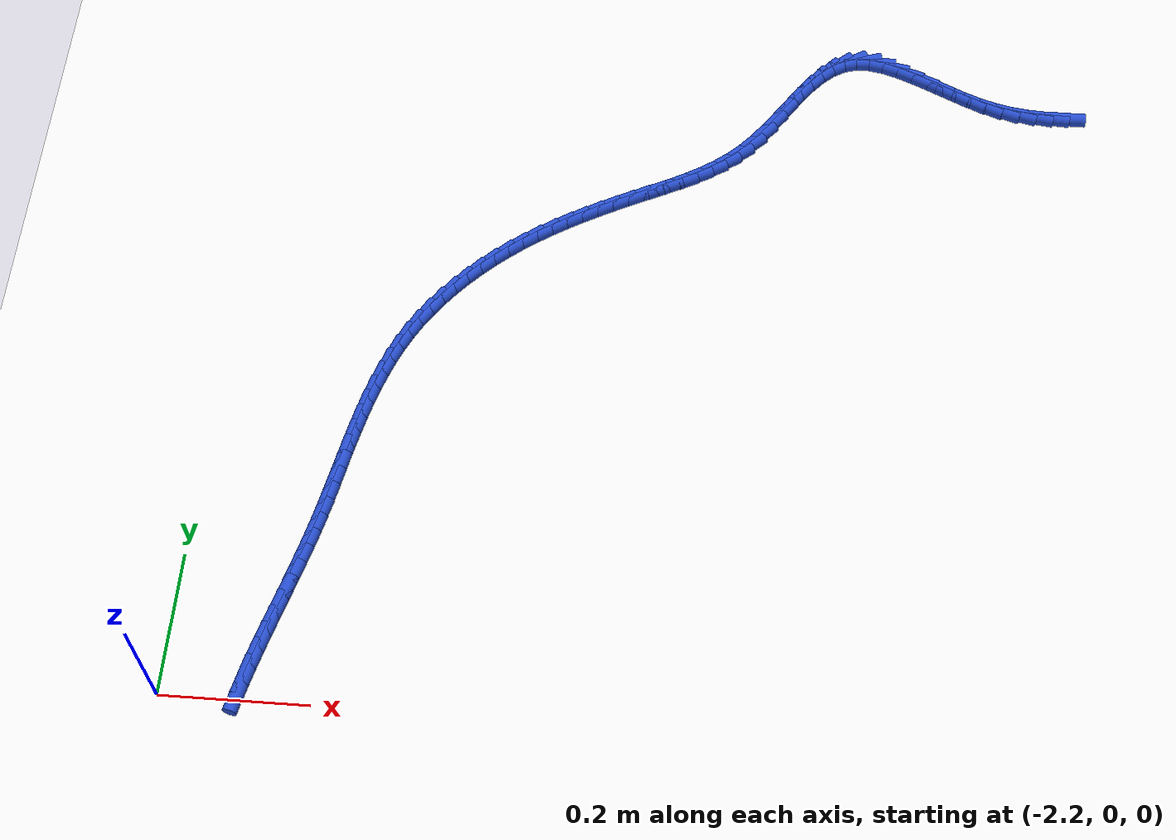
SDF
<sdf version="1.6">
 <world name="default">
  <model name="ground_plane">
   <static>1</static>
   <link name="link">
    <collision name="collision">
     <geometry><plane><normal>0 0 1</normal><size>100 100</size></plane></geometry>
     <surface><friction><ode><mu>100</mu><mu2>50</mu2></ode></friction></surface>
    </collision>
    <visual name="visual">
     <cast_shadows>0</cast_shadows>
     <geometry><plane><normal>0 0 1</normal><size>100 100</size></plane></geometry>
     <material>
      <script><uri>file://media/materials/scripts/gazebo.material</uri><name>Gazebo/WhiteGlow</name></script>
     </material>
    </visual>
   </link>
  </model>
  <model name="line">
   <link name="link_68">
    <pose>-1.021277357837377 1.003195766238584 0.01 0 1.57 -0.001047727772502265</pose>
    <collision name="collision">
     <geometry><cylinder><radius>0.01</radius><length>0.08</length></cylinder></geometry>
    </collision>
    <visual name="visual">
     <material>
      <script><name>Gazebo/Blue</name><uri>file://media/materials/scripts/gazebo.material</uri></script>
     </material>
     <geometry><cylinder><radius>0.01</radius><length>0.08</length></cylinder></geometry>
    </visual>
   </link>
   <link name="link_69">
    <pose>-1.0450305179139865 1.0032206530931873 0.01 0 1.57 -0.06642824713619397</pose>
    <collision name="collision">
     <geometry><cylinder><radius>0.01</radius><length>0.08</length></cylinder></geometry>
    </collision>
    <visual name="visual">
     <material>
      <script><name>Gazebo/Blue</name><uri>file://media/materials/scripts/gazebo.material</uri></script>
     </material>
     <geometry><cylinder><radius>0.01</radius><length>0.08</length></cylinder></geometry>
    </visual>
   </link>
   <link name="link_70">
    <pose>-1.0688698172328237 1.0048065894065108 0.01 0 1.57 -0.14197237797413534</pose>
    <collision name="collision">
     <geometry><cylinder><radius>0.01</radius><length>0.08</length></cylinder></geometry>
    </collision>
    <visual name="visual">
     <material>
      <script><name>Gazebo/Blue</name><uri>file://media/materials/scripts/gazebo.material</uri></script>
     </material>
     <geometry><cylinder><radius>0.01</radius><length>0.08</length></cylinder></geometry>
    </visual>
   </link>
   <link name="link_71">
    <pose>-1.0928592649434599 1.0082354972279208 0.01 0 1.57 -0.22555711141883675</pose>
    <collision name="collision">
     <geometry><cylinder><radius>0.01</radius><length>0.08</length></cylinder></geometry>
    </collision>
    <visual name="visual">
     <material>
      <script><name>Gazebo/Blue</name><uri>file://media/materials/scripts/gazebo.material</uri></script>
     </material>
     <geometry><cylinder><radius>0.01</radius><length>0.08</length></cylinder></geometry>
    </visual>
   </link>
   <link name="link_72">
    <pose>-1.1170628701954666 1.0137892986067842 0.01 0 1.57 -0.3134832671092745</pose>
    <collision name="collision">
     <geometry><cylinder><radius>0.01</radius><length>0.08</length></cylinder></geometry>
    </collision>
    <visual name="visual">
     <material>
      <script><name>Gazebo/Blue</name><uri>file://media/materials/scripts/gazebo.material</uri></script>
     </material>
     <geometry><cylinder><radius>0.01</radius><length>0.08</length></cylinder></geometry>
    </visual>
   </link>
   <link name="link_73">
    <pose>-1.1415386250931434 1.021723665137857 0.01 0 1.57 -0.38495843023401094</pose>
    <collision name="collision">
     <geometry><cylinder><radius>0.01</radius><length>0.08</length></cylinder></geometry>
    </collision>
    <visual name="visual">
     <material>
      <script><name>Gazebo/Blue</name><uri>file://media/materials/scripts/gazebo.material</uri></script>
     </material>
     <geometry><cylinder><radius>0.01</radius><length>0.08</length></cylinder></geometry>
    </visual>
   </link>
   <link name="link_74">
    <pose>-1.1662131491517784 1.0317211315972954 0.01 0 1.57 -0.4256793121092552</pose>
    <collision name="collision">
     <geometry><cylinder><radius>0.01</radius><length>0.08</length></cylinder></geometry>
    </collision>
    <visual name="visual">
     <material>
      <script><name>Gazebo/Blue</name><uri>file://media/materials/scripts/gazebo.material</uri></script>
     </material>
     <geometry><cylinder><radius>0.01</radius><length>0.08</length></cylinder></geometry>
    </visual>
   </link>
   <link name="link_75">
    <pose>-1.1908854745630004 1.042907609851355 0.01 0 1.57 -0.43870521807391655</pose>
    <collision name="collision">
     <geometry><cylinder><radius>0.01</radius><length>0.08</length></cylinder></geometry>
    </collision>
    <visual name="visual">
     <material>
      <script><name>Gazebo/Blue</name><uri>file://media/materials/scripts/gazebo.material</uri></script>
     </material>
     <geometry><cylinder><radius>0.01</radius><length>0.08</length></cylinder></geometry>
    </visual>
   </link>
   <link name="link_76">
    <pose>-1.2153493737290977 1.054386064978441 0.01 0 1.57 -0.4246242303429826</pose>
    <collision name="collision">
     <geometry><cylinder><radius>0.01</radius><length>0.08</length></cylinder></geometry>
    </collision>
    <visual name="visual">
     <material>
      <script><name>Gazebo/Blue</name><uri>file://media/materials/scripts/gazebo.material</uri></script>
     </material>
     <geometry><cylinder><radius>0.01</radius><length>0.08</length></cylinder></geometry>
    </visual>
   </link>
   <link name="link_77">
    <pose>-1.2393986190523578 1.0652594620569584 0.01 0 1.57 -0.380504852113136</pose>
    <collision name="collision">
     <geometry><cylinder><radius>0.01</radius><length>0.08</length></cylinder></geometry>
    </collision>
    <visual name="visual">
     <material>
      <script><name>Gazebo/Blue</name><uri>file://media/materials/scripts/gazebo.material</uri></script>
     </material>
     <geometry><cylinder><radius>0.01</radius><length>0.08</length></cylinder></geometry>
    </visual>
   </link>
   <link name="link_78">
    <pose>-1.262826982935069 1.0746307661653134 0.01 0 1.57 -0.2992240411870275</pose>
    <collision name="collision">
     <geometry><cylinder><radius>0.01</radius><length>0.08</length></cylinder></geometry>
    </collision>
    <visual name="visual">
     <material>
      <script><name>Gazebo/Blue</name><uri>file://media/materials/scripts/gazebo.material</uri></script>
     </material>
     <geometry><cylinder><radius>0.01</radius><length>0.08</length></cylinder></geometry>
    </visual>
   </link>
   <link name="link_79">
    <pose>-1.2854282377795185 1.0816029423819105 0.01 0 1.57 -0.1688167500045451</pose>
    <collision name="collision">
     <geometry><cylinder><radius>0.01</radius><length>0.08</length></cylinder></geometry>
    </collision>
    <visual name="visual">
     <material>
      <script><name>Gazebo/Blue</name><uri>file://media/materials/scripts/gazebo.material</uri></script>
     </material>
     <geometry><cylinder><radius>0.01</radius><length>0.08</length></cylinder></geometry>
    </visual>
   </link>
   <link name="link_80">
    <pose>-1.3069961559879946 1.0852789557851543 0.01 0 1.57 0.025436038229379905</pose>
    <collision name="collision">
     <geometry><cylinder><radius>0.01</radius><length>0.08</length></cylinder></geometry>
    </collision>
    <visual name="visual">
     <material>
      <script><name>Gazebo/Blue</name><uri>file://media/materials/scripts/gazebo.material</uri></script>
     </material>
     <geometry><cylinder><radius>0.01</radius><length>0.08</length></cylinder></geometry>
    </visual>
   </link>
   <link name="link_81">
    <pose>-1.3273245099627844 1.0847617714534512 0.01 0 1.57 0.2852766823593443</pose>
    <collision name="collision">
     <geometry><cylinder><radius>0.01</radius><length>0.08</length></cylinder></geometry>
    </collision>
    <visual name="visual">
     <material>
      <script><name>Gazebo/Blue</name><uri>file://media/materials/scripts/gazebo.material</uri></script>
     </material>
     <geometry><cylinder><radius>0.01</radius><length>0.08</length></cylinder></geometry>
    </visual>
   </link>
   <link name="link_82">
    <pose>-1.346225448578817 1.0792185786723034 0.01 0 1.57 0.5372466858652357</pose>
    <collision name="collision">
     <geometry><cylinder><radius>0.01</radius><length>0.08</length></cylinder></geometry>
    </collision>
    <visual name="visual">
     <material>
      <script><name>Gazebo/Blue</name><uri>file://media/materials/scripts/gazebo.material</uri></script>
     </material>
     <geometry><cylinder><radius>0.01</radius><length>0.08</length></cylinder></geometry>
    </visual>
   </link>
   <link name="link_83">
    <pose>-1.3637812652330452 1.0687606988285516 0.01 0 1.57 0.7224839115204642</pose>
    <collision name="collision">
     <geometry><cylinder><radius>0.01</radius><length>0.08</length></cylinder></geometry>
    </collision>
    <visual name="visual">
     <material>
      <script><name>Gazebo/Blue</name><uri>file://media/materials/scripts/gazebo.material</uri></script>
     </material>
     <geometry><cylinder><radius>0.01</radius><length>0.08</length></cylinder></geometry>
    </visual>
   </link>
   <link name="link_84">
    <pose>-1.380279772194519 1.0542177242668274 0.01 0 1.57 0.8463802153047483</pose>
    <collision name="collision">
     <geometry><cylinder><radius>0.01</radius><length>0.08</length></cylinder></geometry>
    </collision>
    <visual name="visual">
     <material>
      <script><name>Gazebo/Blue</name><uri>file://media/materials/scripts/gazebo.material</uri></script>
     </material>
     <geometry><cylinder><radius>0.01</radius><length>0.08</length></cylinder></geometry>
    </visual>
   </link>
   <link name="link_85">
    <pose>-1.3960139294172942 1.0364372380525244 0.01 0 1.57 0.9230268362988991</pose>
    <collision name="collision">
     <geometry><cylinder><radius>0.01</radius><length>0.08</length></cylinder></geometry>
    </collision>
    <visual name="visual">
     <material>
      <script><name>Gazebo/Blue</name><uri>file://media/materials/scripts/gazebo.material</uri></script>
     </material>
     <geometry><cylinder><radius>0.01</radius><length>0.08</length></cylinder></geometry>
    </visual>
   </link>
   <link name="link_86">
    <pose>-1.4112766968554273 1.0162668232510383 0.01 0 1.57 0.9636212690488895</pose>
    <collision name="collision">
     <geometry><cylinder><radius>0.01</radius><length>0.08</length></cylinder></geometry>
    </collision>
    <visual name="visual">
     <material>
      <script><name>Gazebo/Blue</name><uri>file://media/materials/scripts/gazebo.material</uri></script>
     </material>
     <geometry><cylinder><radius>0.01</radius><length>0.08</length></cylinder></geometry>
    </visual>
   </link>
   <link name="link_87">
    <pose>-1.4263610344629738 0.9945540629277625 0.01 0 1.57 0.9747877971718452</pose>
    <collision name="collision">
     <geometry><cylinder><radius>0.01</radius><length>0.08</length></cylinder></geometry>
    </collision>
    <visual name="visual">
     <material>
      <script><name>Gazebo/Blue</name><uri>file://media/materials/scripts/gazebo.material</uri></script>
     </material>
     <geometry><cylinder><radius>0.01</radius><length>0.08</length></cylinder></geometry>
    </visual>
   </link>
   <link name="link_88">
    <pose>-1.4415599021939898 0.9721465401480931 0.01 0 1.57 0.9592244612856421</pose>
    <collision name="collision">
     <geometry><cylinder><radius>0.01</radius><length>0.08</length></cylinder></geometry>
    </collision>
    <visual name="visual">
     <material>
      <script><name>Gazebo/Blue</name><uri>file://media/materials/scripts/gazebo.material</uri></script>
     </material>
     <geometry><cylinder><radius>0.01</radius><length>0.08</length></cylinder></geometry>
    </visual>
   </link>
   <link name="link_89">
    <pose>-1.4571662600025304 0.9498918379774234 0.01 0 1.57 0.9163626841908454</pose>
    <collision name="collision">
     <geometry><cylinder><radius>0.01</radius><length>0.08</length></cylinder></geometry>
    </collision>
    <visual name="visual">
     <material>
      <script><name>Gazebo/Blue</name><uri>file://media/materials/scripts/gazebo.material</uri></script>
     </material>
     <geometry><cylinder><radius>0.01</radius><length>0.08</length></cylinder></geometry>
    </visual>
   </link>
   <link name="link_90">
    <pose>-1.4734730678426522 0.9286375394811484 0.01 0 1.57 0.8428289214387691</pose>
    <collision name="collision">
     <geometry><cylinder><radius>0.01</radius><length>0.08</length></cylinder></geometry>
    </collision>
    <visual name="visual">
     <material>
      <script><name>Gazebo/Blue</name><uri>file://media/materials/scripts/gazebo.material</uri></script>
     </material>
     <geometry><cylinder><radius>0.01</radius><length>0.08</length></cylinder></geometry>
    </visual>
   </link>
   <link name="link_91">
    <pose>-1.4907720608044266 0.9092280284286016 0.01 0 1.57 0.7479312889683268</pose>
    <collision name="collision">
     <geometry><cylinder><radius>0.01</radius><length>0.08</length></cylinder></geometry>
    </collision>
    <visual name="visual">
     <material>
      <script><name>Gazebo/Blue</name><uri>file://media/materials/scripts/gazebo.material</uri></script>
     </material>
     <geometry><cylinder><radius>0.01</radius><length>0.08</length></cylinder></geometry>
    </visual>
   </link>
   <link name="link_92">
    <pose>-1.5092081343317212 0.8921241492675954 0.01 0 1.57 0.6599314862826788</pose>
    <collision name="collision">
     <geometry><cylinder><radius>0.01</radius><length>0.08</length></cylinder></geometry>
    </collision>
    <visual name="visual">
     <material>
      <script><name>Gazebo/Blue</name><uri>file://media/materials/scripts/gazebo.material</uri></script>
     </material>
     <geometry><cylinder><radius>0.01</radius><length>0.08</length></cylinder></geometry>
    </visual>
   </link>
   <link name="link_93">
    <pose>-1.52864173274521 0.8770437714142152 0.01 0 1.57 0.5851990135201297</pose>
    <collision name="collision">
     <geometry><cylinder><radius>0.01</radius><length>0.08</length></cylinder></geometry>
    </collision>
    <visual name="visual">
     <material>
      <script><name>Gazebo/Blue</name><uri>file://media/materials/scripts/gazebo.material</uri></script>
     </material>
     <geometry><cylinder><radius>0.01</radius><length>0.08</length></cylinder></geometry>
    </visual>
   </link>
   <link name="link_94">
    <pose>-1.5489007208581538 0.8636196679056594 0.01 0 1.57 0.5257968626396159</pose>
    <collision name="collision">
     <geometry><cylinder><radius>0.01</radius><length>0.08</length></cylinder></geometry>
    </collision>
    <visual name="visual">
     <material>
      <script><name>Gazebo/Blue</name><uri>file://media/materials/scripts/gazebo.material</uri></script>
     </material>
     <geometry><cylinder><radius>0.01</radius><length>0.08</length></cylinder></geometry>
    </visual>
   </link>
   <link name="link_95">
    <pose>-1.5698129634838118 0.8514846117791249 0.01 0 1.57 0.4827769463482549</pose>
    <collision name="collision">
     <geometry><cylinder><radius>0.01</radius><length>0.08</length></cylinder></geometry>
    </collision>
    <visual name="visual">
     <material>
      <script><name>Gazebo/Blue</name><uri>file://media/materials/scripts/gazebo.material</uri></script>
     </material>
     <geometry><cylinder><radius>0.01</radius><length>0.08</length></cylinder></geometry>
    </visual>
   </link>
   <link name="link_96">
    <pose>-1.591206325435445 0.8402713760718108 0.01 0 1.57 0.45652531286291526</pose>
    <collision name="collision">
     <geometry><cylinder><radius>0.01</radius><length>0.08</length></cylinder></geometry>
    </collision>
    <visual name="visual">
     <material>
      <script><name>Gazebo/Blue</name><uri>file://media/materials/scripts/gazebo.material</uri></script>
     </material>
     <geometry><cylinder><radius>0.01</radius><length>0.08</length></cylinder></geometry>
    </visual>
   </link>
   <link name="link_97">
    <pose>-1.612908671526312 0.8296127338209136 0.01 0 1.57 0.44709050603921036</pose>
    <collision name="collision">
     <geometry><cylinder><radius>0.01</radius><length>0.08</length></cylinder></geometry>
    </collision>
    <visual name="visual">
     <material>
      <script><name>Gazebo/Blue</name><uri>file://media/materials/scripts/gazebo.material</uri></script>
     </material>
     <geometry><cylinder><radius>0.01</radius><length>0.08</length></cylinder></geometry>
    </visual>
   </link>
   <link name="link_98">
    <pose>-1.6347478665696735 0.819141458063632 0.01 0 1.57 0.45315028615970465</pose>
    <collision name="collision">
     <geometry><cylinder><radius>0.01</radius><length>0.08</length></cylinder></geometry>
    </collision>
    <visual name="visual">
     <material>
      <script><name>Gazebo/Blue</name><uri>file://media/materials/scripts/gazebo.material</uri></script>
     </material>
     <geometry><cylinder><radius>0.01</radius><length>0.08</length></cylinder></geometry>
    </visual>
   </link>
   <link name="link_99">
    <pose>-1.6565626450781246 0.8085188306167198 0.01 0 1.57 0.4663936069052064</pose>
    <collision name="collision">
     <geometry><cylinder><radius>0.01</radius><length>0.08</length></cylinder></geometry>
    </collision>
    <visual name="visual">
     <material>
      <script><name>Gazebo/Blue</name><uri>file://media/materials/scripts/gazebo.material</uri></script>
     </material>
     <geometry><cylinder><radius>0.01</radius><length>0.08</length></cylinder></geometry>
    </visual>
   </link>
   <link name="link_100">
    <pose>-1.6782633313850313 0.7975938973146846 0.01 0 1.57 0.4834891158287905</pose>
    <collision name="collision">
     <geometry><cylinder><radius>0.01</radius><length>0.08</length></cylinder></geometry>
    </collision>
    <visual name="visual">
     <material>
      <script><name>Gazebo/Blue</name><uri>file://media/materials/scripts/gazebo.material</uri></script>
     </material>
     <geometry><cylinder><radius>0.01</radius><length>0.08</length></cylinder></geometry>
    </visual>
   </link>
   <link name="link_101">
    <pose>-1.6997892082763606 0.7862916555079024 0.01 0 1.57 0.5044501700300241</pose>
    <collision name="collision">
     <geometry><cylinder><radius>0.01</radius><length>0.08</length></cylinder></geometry>
    </collision>
    <visual name="visual">
     <material>
      <script><name>Gazebo/Blue</name><uri>file://media/materials/scripts/gazebo.material</uri></script>
     </material>
     <geometry><cylinder><radius>0.01</radius><length>0.08</length></cylinder></geometry>
    </visual>
   </link>
   <link name="link_102">
    <pose>-1.7210796400494957 0.7745373163328794 0.01 0 1.57 0.5293003940898698</pose>
    <collision name="collision">
     <geometry><cylinder><radius>0.01</radius><length>0.08</length></cylinder></geometry>
    </collision>
    <visual name="visual">
     <material>
      <script><name>Gazebo/Blue</name><uri>file://media/materials/scripts/gazebo.material</uri></script>
     </material>
     <geometry><cylinder><radius>0.01</radius><length>0.08</length></cylinder></geometry>
    </visual>
   </link>
   <link name="link_103">
    <pose>-1.742073991001818 0.7622560909261215 0.01 0 1.57 0.5580548289198379</pose>
    <collision name="collision">
     <geometry><cylinder><radius>0.01</radius><length>0.08</length></cylinder></geometry>
    </collision>
    <visual name="visual">
     <material>
      <script><name>Gazebo/Blue</name><uri>file://media/materials/scripts/gazebo.material</uri></script>
     </material>
     <geometry><cylinder><radius>0.01</radius><length>0.08</length></cylinder></geometry>
    </visual>
   </link>
   <link name="link_104">
    <pose>-1.7627116254307114 0.7493731904241345 0.01 0 1.57 0.5907085678365759</pose>
    <collision name="collision">
     <geometry><cylinder><radius>0.01</radius><length>0.08</length></cylinder></geometry>
    </collision>
    <visual name="visual">
     <material>
      <script><name>Gazebo/Blue</name><uri>file://media/materials/scripts/gazebo.material</uri></script>
     </material>
     <geometry><cylinder><radius>0.01</radius><length>0.08</length></cylinder></geometry>
    </visual>
   </link>
   <link name="link_105">
    <pose>-1.7829319076335568 0.7358138259634253 0.01 0 1.57 0.6272236544973503</pose>
    <collision name="collision">
     <geometry><cylinder><radius>0.01</radius><length>0.08</length></cylinder></geometry>
    </collision>
    <visual name="visual">
     <material>
      <script><name>Gazebo/Blue</name><uri>file://media/materials/scripts/gazebo.material</uri></script>
     </material>
     <geometry><cylinder><radius>0.01</radius><length>0.08</length></cylinder></geometry>
    </visual>
   </link>
   <link name="link_106">
    <pose>-1.802674201907737 0.7215032086804991 0.01 0 1.57 0.6675071338738644</pose>
    <collision name="collision">
     <geometry><cylinder><radius>0.01</radius><length>0.08</length></cylinder></geometry>
    </collision>
    <visual name="visual">
     <material>
      <script><name>Gazebo/Blue</name><uri>file://media/materials/scripts/gazebo.material</uri></script>
     </material>
     <geometry><cylinder><radius>0.01</radius><length>0.08</length></cylinder></geometry>
    </visual>
   </link>
   <link name="link_107">
    <pose>-1.8218777880571502 0.7063668535674182 0.01 0 1.57 0.7105854941950045</pose>
    <collision name="collision">
     <geometry><cylinder><radius>0.01</radius><length>0.08</length></cylinder></geometry>
    </collision>
    <visual name="visual">
     <material>
      <script><name>Gazebo/Blue</name><uri>file://media/materials/scripts/gazebo.material</uri></script>
     </material>
     <geometry><cylinder><radius>0.01</radius><length>0.08</length></cylinder></geometry>
    </visual>
   </link>
   <link name="link_108">
    <pose>-1.8404721414717926 0.690365534259567 0.01 0 1.57 0.7549486840732899</pose>
    <collision name="collision">
     <geometry><cylinder><radius>0.01</radius><length>0.08</length></cylinder></geometry>
    </collision>
    <visual name="visual">
     <material>
      <script><name>Gazebo/Blue</name><uri>file://media/materials/scripts/gazebo.material</uri></script>
     </material>
     <geometry><cylinder><radius>0.01</radius><length>0.08</length></cylinder></geometry>
    </visual>
   </link>
   <link name="link_109">
    <pose>-1.8583679173659764 0.6735277055274206 0.01 0 1.57 0.8007232453513938</pose>
    <collision name="collision">
     <geometry><cylinder><radius>0.01</radius><length>0.08</length></cylinder></geometry>
    </collision>
    <visual name="visual">
     <material>
      <script><name>Gazebo/Blue</name><uri>file://media/materials/scripts/gazebo.material</uri></script>
     </material>
     <geometry><cylinder><radius>0.01</radius><length>0.08</length></cylinder></geometry>
    </visual>
   </link>
   <link name="link_110">
    <pose>-1.8754736392254499 0.655889488265903 0.01 0 1.57 0.8482233363396147</pose>
    <collision name="collision">
     <geometry><cylinder><radius>0.01</radius><length>0.08</length></cylinder></geometry>
    </collision>
    <visual name="visual">
     <material>
      <script><name>Gazebo/Blue</name><uri>file://media/materials/scripts/gazebo.material</uri></script>
     </material>
     <geometry><cylinder><radius>0.01</radius><length>0.08</length></cylinder></geometry>
    </visual>
   </link>
   <link name="link_111">
    <pose>-1.8916978305359606 0.6374870033699367 0.01 0 1.57 0.89775721420349</pose>
    <collision name="collision">
     <geometry><cylinder><radius>0.01</radius><length>0.08</length></cylinder></geometry>
    </collision>
    <visual name="visual">
     <material>
      <script><name>Gazebo/Blue</name><uri>file://media/materials/scripts/gazebo.material</uri></script>
     </material>
     <geometry><cylinder><radius>0.01</radius><length>0.08</length></cylinder></geometry>
    </visual>
   </link>
   <link name="link_112">
    <pose>-1.9069490147832562 0.6183563717344455 0.01 0 1.57 0.94962350021868</pose>
    <collision name="collision">
     <geometry><cylinder><radius>0.01</radius><length>0.08</length></cylinder></geometry>
    </collision>
    <visual name="visual">
     <material>
      <script><name>Gazebo/Blue</name><uri>file://media/materials/scripts/gazebo.material</uri></script>
     </material>
     <geometry><cylinder><radius>0.01</radius><length>0.08</length></cylinder></geometry>
    </visual>
   </link>
   <link name="link_113">
    <pose>-1.921135715453086 0.5985337142543518 0.01 0 1.57 1.004104364935651</pose>
    <collision name="collision">
     <geometry><cylinder><radius>0.01</radius><length>0.08</length></cylinder></geometry>
    </collision>
    <visual name="visual">
     <material>
      <script><name>Gazebo/Blue</name><uri>file://media/materials/scripts/gazebo.material</uri></script>
     </material>
     <geometry><cylinder><radius>0.01</radius><length>0.08</length></cylinder></geometry>
    </visual>
   </link>
   <link name="link_114">
    <pose>-1.9341664560311964 0.5780551518245798 0.01 0 1.57 1.0614522645652</pose>
    <collision name="collision">
     <geometry><cylinder><radius>0.01</radius><length>0.08</length></cylinder></geometry>
    </collision>
    <visual name="visual">
     <material>
      <script><name>Gazebo/Blue</name><uri>file://media/materials/scripts/gazebo.material</uri></script>
     </material>
     <geometry><cylinder><radius>0.01</radius><length>0.08</length></cylinder></geometry>
    </visual>
   </link>
   <link name="link_115">
    <pose>-1.9459498327930393 0.5569568136646168 0.01 0 1.57 1.1197683848967293</pose>
    <collision name="collision">
     <geometry><cylinder><radius>0.01</radius><length>0.08</length></cylinder></geometry>
    </collision>
    <visual name="visual">
     <material>
      <script><name>Gazebo/Blue</name><uri>file://media/materials/scripts/gazebo.material</uri></script>
     </material>
     <geometry><cylinder><radius>0.01</radius><length>0.08</length></cylinder></geometry>
    </visual>
   </link>
   <link name="link_116">
    <pose>-1.9564479629979017 0.5352809498993949 0.01 0 1.57 1.1731076463486483</pose>
    <collision name="collision">
     <geometry><cylinder><radius>0.01</radius><length>0.08</length></cylinder></geometry>
    </collision>
    <visual name="visual">
     <material>
      <script><name>Gazebo/Blue</name><uri>file://media/materials/scripts/gazebo.material</uri></script>
     </material>
     <geometry><cylinder><radius>0.01</radius><length>0.08</length></cylinder></geometry>
    </visual>
   </link>
   <link name="link_117">
    <pose>-1.965771110136918 0.5130867533371087 0.01 0 1.57 1.220181093786444</pose>
    <collision name="collision">
     <geometry><cylinder><radius>0.01</radius><length>0.08</length></cylinder></geometry>
    </collision>
    <visual name="visual">
     <material>
      <script><name>Gazebo/Blue</name><uri>file://media/materials/scripts/gazebo.material</uri></script>
     </material>
     <geometry><cylinder><radius>0.01</radius><length>0.08</length></cylinder></geometry>
    </visual>
   </link>
   <link name="link_118">
    <pose>-1.9740549579395814 0.4904363239611253 0.01 0 1.57 1.260858310455369</pose>
    <collision name="collision">
     <geometry><cylinder><radius>0.01</radius><length>0.08</length></cylinder></geometry>
    </collision>
    <visual name="visual">
     <material>
      <script><name>Gazebo/Blue</name><uri>file://media/materials/scripts/gazebo.material</uri></script>
     </material>
     <geometry><cylinder><radius>0.01</radius><length>0.08</length></cylinder></geometry>
    </visual>
   </link>
   <link name="link_119">
    <pose>-1.981435190135385 0.4673917617548108 0.01 0 1.57 1.2951376537024943</pose>
    <collision name="collision">
     <geometry><cylinder><radius>0.01</radius><length>0.08</length></cylinder></geometry>
    </collision>
    <visual name="visual">
     <material>
      <script><name>Gazebo/Blue</name><uri>file://media/materials/scripts/gazebo.material</uri></script>
     </material>
     <geometry><cylinder><radius>0.01</radius><length>0.08</length></cylinder></geometry>
    </visual>
   </link>
   <link name="link_120">
    <pose>-1.988047490453823 0.4440151667015316 0.01 0 1.57 1.3230962703154947</pose>
    <collision name="collision">
     <geometry><cylinder><radius>0.01</radius><length>0.08</length></cylinder></geometry>
    </collision>
    <visual name="visual">
     <material>
      <script><name>Gazebo/Blue</name><uri>file://media/materials/scripts/gazebo.material</uri></script>
     </material>
     <geometry><cylinder><radius>0.01</radius><length>0.08</length></cylinder></geometry>
    </visual>
   </link>
   <link name="link_121">
    <pose>-1.9940275426243885 0.42036863878465397 0.01 0 1.57 1.3448479930931008</pose>
    <collision name="collision">
     <geometry><cylinder><radius>0.01</radius><length>0.08</length></cylinder></geometry>
    </collision>
    <visual name="visual">
     <material>
      <script><name>Gazebo/Blue</name><uri>file://media/materials/scripts/gazebo.material</uri></script>
     </material>
     <geometry><cylinder><radius>0.01</radius><length>0.08</length></cylinder></geometry>
    </visual>
   </link>
   <link name="link_122">
    <pose>-1.9995110303765753 0.3965142779875443 0.01 0 1.57 1.360510640310071</pose>
    <collision name="collision">
     <geometry><cylinder><radius>0.01</radius><length>0.08</length></cylinder></geometry>
    </collision>
    <visual name="visual">
     <material>
      <script><name>Gazebo/Blue</name><uri>file://media/materials/scripts/gazebo.material</uri></script>
     </material>
     <geometry><cylinder><radius>0.01</radius><length>0.08</length></cylinder></geometry>
    </visual>
   </link>
   <link name="link_123">
    <pose>-2.004633637439877 0.3725141842935696 0.01 0 1.57 1.370182324123426</pose>
    <collision name="collision">
     <geometry><cylinder><radius>0.01</radius><length>0.08</length></cylinder></geometry>
    </collision>
    <visual name="visual">
     <material>
      <script><name>Gazebo/Blue</name><uri>file://media/materials/scripts/gazebo.material</uri></script>
     </material>
     <geometry><cylinder><radius>0.01</radius><length>0.08</length></cylinder></geometry>
    </visual>
   </link>
   <link name="link_124">
    <pose>-2.009531047543786 0.34843045768609593 0.01 0 1.57 1.37392556515944</pose>
    <collision name="collision">
     <geometry><cylinder><radius>0.01</radius><length>0.08</length></cylinder></geometry>
    </collision>
    <visual name="visual">
     <material>
      <script><name>Gazebo/Blue</name><uri>file://media/materials/scripts/gazebo.material</uri></script>
     </material>
     <geometry><cylinder><radius>0.01</radius><length>0.08</length></cylinder></geometry>
    </visual>
   </link>
   <link name="link_125">
    <pose>-2.0143389444177973 0.3243251981484897 0.01 0 1.57 1.3717579465522933</pose>
    <collision name="collision">
     <geometry><cylinder><radius>0.01</radius><length>0.08</length></cylinder></geometry>
    </collision>
    <visual name="visual">
     <material>
      <script><name>Gazebo/Blue</name><uri>file://media/materials/scripts/gazebo.material</uri></script>
     </material>
     <geometry><cylinder><radius>0.01</radius><length>0.08</length></cylinder></geometry>
    </visual>
   </link>
   <link name="link_126">
    <pose>-2.019193011791404 0.30026050566411705 0.01 0 1.57 1.3636484041277424</pose>
    <collision name="collision">
     <geometry><cylinder><radius>0.01</radius><length>0.08</length></cylinder></geometry>
    </collision>
    <visual name="visual">
     <material>
      <script><name>Gazebo/Blue</name><uri>file://media/materials/scripts/gazebo.material</uri></script>
     </material>
     <geometry><cylinder><radius>0.01</radius><length>0.08</length></cylinder></geometry>
    </visual>
   </link>
   <link name="link_127">
    <pose>-2.0242289333940984 0.276298480216345 0.01 0 1.57 1.3495292353540327</pose>
    <collision name="collision">
     <geometry><cylinder><radius>0.01</radius><length>0.08</length></cylinder></geometry>
    </collision>
    <visual name="visual">
     <material>
      <script><name>Gazebo/Blue</name><uri>file://media/materials/scripts/gazebo.material</uri></script>
     </material>
     <geometry><cylinder><radius>0.01</radius><length>0.08</length></cylinder></geometry>
    </visual>
   </link>
   <link name="link_128">
    <pose>-2.0295821590741445 0.2525011044812737 0.01 0 1.57 1.3319525597787136</pose>
    <collision name="collision">
     <geometry><cylinder><radius>0.01</radius><length>0.08</length></cylinder></geometry>
    </collision>
    <visual name="visual">
     <material>
      <script><name>Gazebo/Blue</name><uri>file://media/materials/scripts/gazebo.material</uri></script>
     </material>
     <geometry><cylinder><radius>0.01</radius><length>0.08</length></cylinder></geometry>
    </visual>
   </link>
   <link name="link_129">
    <pose>-2.0353286960382135 0.22890054662717874 0.01 0 1.57 1.3170899373134233</pose>
    <collision name="collision">
     <geometry><cylinder><radius>0.01</radius><length>0.08</length></cylinder></geometry>
    </collision>
    <visual name="visual">
     <material>
      <script><name>Gazebo/Blue</name><uri>file://media/materials/scripts/gazebo.material</uri></script>
     </material>
     <geometry><cylinder><radius>0.01</radius><length>0.08</length></cylinder></geometry>
    </visual>
   </link>
   <link name="link_130">
    <pose>-2.041406722976054 0.2054598444928909 0.01 0 1.57 1.3058955926807736</pose>
    <collision name="collision">
     <geometry><cylinder><radius>0.01</radius><length>0.08</length></cylinder></geometry>
    </collision>
    <visual name="visual">
     <material>
      <script><name>Gazebo/Blue</name><uri>file://media/materials/scripts/gazebo.material</uri></script>
     </material>
     <geometry><cylinder><radius>0.01</radius><length>0.08</length></cylinder></geometry>
    </visual>
   </link>
   <link name="link_131">
    <pose>-2.0477349353192813 0.1821322637446658 0.01 0 1.57 1.2984272094149898</pose>
    <collision name="collision">
     <geometry><cylinder><radius>0.01</radius><length>0.08</length></cylinder></geometry>
    </collision>
    <visual name="visual">
     <material>
      <script><name>Gazebo/Blue</name><uri>file://media/materials/scripts/gazebo.material</uri></script>
     </material>
     <geometry><cylinder><radius>0.01</radius><length>0.08</length></cylinder></geometry>
    </visual>
   </link>
   <link name="link_132">
    <pose>-2.054232028499515 0.15887107004876005 0.01 0 1.57 1.2947165864309267</pose>
    <collision name="collision">
     <geometry><cylinder><radius>0.01</radius><length>0.08</length></cylinder></geometry>
    </collision>
    <visual name="visual">
     <material>
      <script><name>Gazebo/Blue</name><uri>file://media/materials/scripts/gazebo.material</uri></script>
     </material>
     <geometry><cylinder><radius>0.01</radius><length>0.08</length></cylinder></geometry>
    </visual>
   </link>
   <link name="link_133">
    <pose>-2.060816697948373 0.13562952907142917 0.01 0 1.57 1.2947723201310921</pose>
    <collision name="collision">
     <geometry><cylinder><radius>0.01</radius><length>0.08</length></cylinder></geometry>
    </collision>
    <visual name="visual">
     <material>
      <script><name>Gazebo/Blue</name><uri>file://media/materials/scripts/gazebo.material</uri></script>
     </material>
     <geometry><cylinder><radius>0.01</radius><length>0.08</length></cylinder></geometry>
    </visual>
   </link>
   <link name="link_134">
    <pose>-2.067407639097473 0.11236090647892902 0.01 0 1.57 1.2985813055723994</pose>
    <collision name="collision">
     <geometry><cylinder><radius>0.01</radius><length>0.08</length></cylinder></geometry>
    </collision>
    <visual name="visual">
     <material>
      <script><name>Gazebo/Blue</name><uri>file://media/materials/scripts/gazebo.material</uri></script>
     </material>
     <geometry><cylinder><radius>0.01</radius><length>0.08</length></cylinder></geometry>
    </visual>
   </link>
   <link name="link_135">
    <pose>-2.073923547378433 0.08901846793751515 0.01 0 1.57 1.3061089648116115</pose>
    <collision name="collision">
     <geometry><cylinder><radius>0.01</radius><length>0.08</length></cylinder></geometry>
    </collision>
    <visual name="visual">
     <material>
      <script><name>Gazebo/Blue</name><uri>file://media/materials/scripts/gazebo.material</uri></script>
     </material>
     <geometry><cylinder><radius>0.01</radius><length>0.08</length></cylinder></geometry>
    </visual>
   </link>
   <link name="link_136">
    <pose>-2.0802831182228703 0.06555547911344414 0.01 0 1.57 1.3172982337977204</pose>
    <collision name="collision">
     <geometry><cylinder><radius>0.01</radius><length>0.08</length></cylinder></geometry>
    </collision>
    <visual name="visual">
     <material>
      <script><name>Gazebo/Blue</name><uri>file://media/materials/scripts/gazebo.material</uri></script>
     </material>
     <geometry><cylinder><radius>0.01</radius><length>0.08</length></cylinder></geometry>
    </visual>
   </link>
   <link name="link_137">
    <pose>-2.0864050470624043 0.0419252056729716 0.01 0 1.57 1.3320674575339915</pose>
    <collision name="collision">
     <geometry><cylinder><radius>0.01</radius><length>0.08</length></cylinder></geometry>
    </collision>
    <visual name="visual">
     <material>
      <script><name>Gazebo/Blue</name><uri>file://media/materials/scripts/gazebo.material</uri></script>
     </material>
     <geometry><cylinder><radius>0.01</radius><length>0.08</length></cylinder></geometry>
    </visual>
   </link>
   <link name="link_138">
    <pose>-2.092208029328651 0.018080913282353284 0.01 0 1.57 1.3502692602623143</pose>
    <collision name="collision">
     <geometry><cylinder><radius>0.01</radius><length>0.08</length></cylinder></geometry>
    </collision>
    <visual name="visual">
     <material>
      <script><name>Gazebo/Blue</name><uri>file://media/materials/scripts/gazebo.material</uri></script>
     </material>
     <geometry><cylinder><radius>0.01</radius><length>0.08</length></cylinder></geometry>
    </visual>
   </link>
  </model>
 </world>
</sdf>
